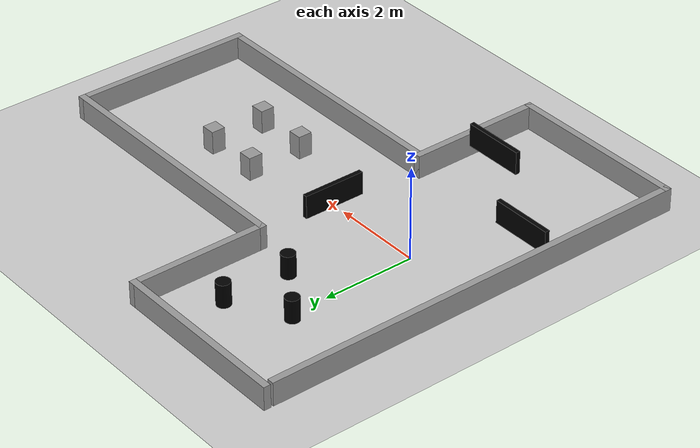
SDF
<sdf version="1.7">
 <world name="default">
  <light name="sun" type="directional">
   <pose>0 0 10 0 -0 0</pose>
   <diffuse>0.8 0.8 0.8 1</diffuse>
   <specular>0.2 0.2 0.2 1</specular>
   <attenuation>
    <range>1000</range>
    <constant>0.9</constant>
    <linear>0.01</linear>
    <quadratic>0.001</quadratic>
   </attenuation>
   <direction>-0.5 0.1 -0.9</direction>
   <spot><inner_angle>0</inner_angle><outer_angle>0</outer_angle><falloff>0</falloff></spot>
  </light>
  <model name="ground_plane">
   <static>1</static>
   <link name="link">
    <collision name="collision">
     <geometry><plane><normal>0 0 1</normal><size>100 100</size></plane></geometry>
     <surface><friction><ode><mu>100</mu><mu2>50</mu2></ode></friction></surface>
    </collision>
    <visual name="visual">
     <cast_shadows>0</cast_shadows>
     <geometry><plane><normal>0 0 1</normal><size>100 100</size></plane></geometry>
     <material>
      <script><uri>file://media/materials/scripts/gazebo.material</uri><name>Gazebo/Grey</name></script>
     </material>
    </visual>
   </link>
  </model>
  <physics type="ode">
   <real_time_update_rate>5000</real_time_update_rate>
   <max_step_size>0.001</max_step_size>
   <real_time_factor>1</real_time_factor>
   <ode>
    <solver>
     <type>quick</type>
     <iters>150</iters>
     <precon_iters>0</precon_iters>
     <sor>1.4</sor>
     <use_dynamic_moi_rescaling>1</use_dynamic_moi_rescaling>
    </solver>
    <constraints>
     <cfm>1e-05</cfm>
     <erp>0.2</erp>
     <contact_max_correcting_vel>2000</contact_max_correcting_vel>
     <contact_surface_layer>0.01</contact_surface_layer>
    </constraints>
   </ode>
  </physics>
  <scene><ambient>0.4 0.4 0.4 1</ambient><background>0.7 0.7 0.7 1</background><shadows>1</shadows></scene>
  <gravity>0 0 -9.8</gravity>
  <magnetic_field>6e-06 2.3e-05 -4.2e-05</magnetic_field>
  <atmosphere type="adiabatic"/>
  <spherical_coordinates>
   <surface_model>EARTH_WGS84</surface_model>
   <latitude_deg>0</latitude_deg>
   <longitude_deg>0</longitude_deg>
   <elevation>0</elevation>
   <heading_deg>0</heading_deg>
  </spherical_coordinates>
  <model name="T-room">
   <pose>3.03824 -0.005141 0 0 -0 0</pose>
   <link name="Wall_16">
    <collision name="Wall_16_Collision">
     <geometry><box><size>9.5 0.15 0.5</size></box></geometry>
     <pose>0 0 0.25 0 -0 0</pose>
    </collision>
    <visual name="Wall_16_Visual">
     <pose>0 0 0.25 0 -0 0</pose>
     <geometry><box><size>9.5 0.15 0.5</size></box></geometry>
     <material>
      <script><uri>file://media/materials/scripts/gazebo.material</uri><name>Gazebo/Grey</name></script>
      <ambient>1 1 1 1</ambient>
     </material>
     <meta><layer>0</layer></meta>
    </visual>
    <pose>-4.85 -0.1 0 0 -0 -1.5708</pose>
   </link>
   <link name="Wall_17">
    <collision name="Wall_17_Collision">
     <geometry><box><size>4 0.15 0.5</size></box></geometry>
     <pose>0 0 0.25 0 -0 0</pose>
    </collision>
    <visual name="Wall_17_Visual">
     <pose>0 0 0.25 0 -0 0</pose>
     <geometry><box><size>4 0.15 0.5</size></box></geometry>
     <material>
      <script><uri>file://media/materials/scripts/gazebo.material</uri><name>Gazebo/Grey</name></script>
      <ambient>1 1 1 1</ambient>
     </material>
     <meta><layer>0</layer></meta>
    </visual>
    <pose>-2.925 -4.775 0 0 -0 0</pose>
   </link>
   <link name="Wall_18">
    <collision name="Wall_18_Collision">
     <geometry><box><size>3 0.15 0.5</size></box></geometry>
     <pose>0 0 0.25 0 -0 0</pose>
    </collision>
    <visual name="Wall_18_Visual">
     <pose>0 0 0.25 0 -0 0</pose>
     <geometry><box><size>3 0.15 0.5</size></box></geometry>
     <material>
      <script><uri>file://media/materials/scripts/gazebo.material</uri><name>Gazebo/Grey</name></script>
      <ambient>1 1 1 1</ambient>
     </material>
     <meta><layer>0</layer></meta>
    </visual>
    <pose>-1 -3.35 0 0 -0 1.5708</pose>
   </link>
   <link name="Wall_19">
    <collision name="Wall_19_Collision">
     <geometry><box><size>6 0.15 0.5</size></box></geometry>
     <pose>0 0 0.25 0 -0 0</pose>
    </collision>
    <visual name="Wall_19_Visual">
     <pose>0 0 0.25 0 -0 0</pose>
     <geometry><box><size>6 0.15 0.5</size></box></geometry>
     <material>
      <script><uri>file://media/materials/scripts/gazebo.material</uri><name>Gazebo/Grey</name></script>
      <ambient>1 1 1 1</ambient>
     </material>
     <meta><layer>0</layer></meta>
    </visual>
    <pose>1.925 -1.925 0 0 -0 0</pose>
   </link>
   <link name="Wall_20">
    <collision name="Wall_20_Collision">
     <geometry><box><size>4 0.15 0.5</size></box></geometry>
     <pose>0 0 0.25 0 -0 0</pose>
    </collision>
    <visual name="Wall_20_Visual">
     <pose>0 0 0.25 0 -0 0</pose>
     <geometry><box><size>4 0.15 0.5</size></box></geometry>
     <material>
      <script><uri>file://media/materials/scripts/gazebo.material</uri><name>Gazebo/Grey</name></script>
      <ambient>1 1 1 1</ambient>
     </material>
     <meta><layer>0</layer></meta>
    </visual>
    <pose>4.85 0 0 0 -0 1.5708</pose>
   </link>
   <link name="Wall_21">
    <collision name="Wall_21_Collision">
     <geometry><box><size>6 0.15 0.5</size></box></geometry>
     <pose>0 0 0.25 0 -0 0</pose>
    </collision>
    <visual name="Wall_21_Visual">
     <pose>0 0 0.25 0 -0 0</pose>
     <geometry><box><size>6 0.15 0.5</size></box></geometry>
     <material>
      <script><uri>file://media/materials/scripts/gazebo.material</uri><name>Gazebo/Grey</name></script>
      <ambient>1 1 1 1</ambient>
     </material>
     <meta><layer>0</layer></meta>
    </visual>
    <pose>1.925 1.925 0 0 -0 3.14159</pose>
   </link>
   <link name="Wall_22">
    <collision name="Wall_22_Collision">
     <geometry><box><size>3 0.15 0.5</size></box></geometry>
     <pose>0 0 0.25 0 -0 0</pose>
    </collision>
    <visual name="Wall_22_Visual">
     <pose>0 0 0.25 0 -0 0</pose>
     <geometry><box><size>3 0.15 0.5</size></box></geometry>
     <material>
      <script><uri>file://media/materials/scripts/gazebo.material</uri><name>Gazebo/Grey</name></script>
      <ambient>1 1 1 1</ambient>
     </material>
     <meta><layer>0</layer></meta>
    </visual>
    <pose>-1 3.35 0 0 -0 1.5708</pose>
   </link>
   <link name="Wall_23">
    <collision name="Wall_23_Collision">
     <geometry><box><size>4 0.15 0.5</size></box></geometry>
     <pose>0 0 0.25 0 -0 0</pose>
    </collision>
    <visual name="Wall_23_Visual">
     <pose>0 0 0.25 0 -0 0</pose>
     <geometry><box><size>4 0.15 0.5</size></box></geometry>
     <material>
      <script><uri>file://media/materials/scripts/gazebo.material</uri><name>Gazebo/Grey</name></script>
      <ambient>1 1 1 1</ambient>
     </material>
     <meta><layer>0</layer></meta>
    </visual>
    <pose>-2.925 4.775 0 0 -0 3.14159</pose>
   </link>
   <static>1</static>
  </model>
  <model name="rectangle_obstacles">
   <link name="obstacle_1">
    <inertial>
     <mass>1</mass>
     <inertia>
      <ixx>0.166667</ixx>
      <ixy>0</ixy>
      <ixz>0</ixz>
      <iyy>0.166667</iyy>
      <iyz>0</iyz>
      <izz>0.166667</izz>
     </inertia>
    </inertial>
    <pose>-0.6 -0.6 0 0 -0 0</pose>
    <visual name="visual">
     <geometry><box><size>0.3 0.3 0.5</size></box></geometry>
     <material>
      <lighting>1</lighting>
      <script><uri>file://media/materials/scripts/gazebo.material</uri><name>Gazebo/Grey</name></script>
      <shader type="pixel"><normal_map>__default__</normal_map></shader>
      <ambient>0.3 0.3 0.3 1</ambient>
      <diffuse>0.7 0.7 0.7 1</diffuse>
      <specular>0.01 0.01 0.01 1</specular>
      <emissive>0 0 0 1</emissive>
     </material>
    </visual>
    <collision name="collision">
     <geometry><box><size>0.3 0.3 0.5</size></box></geometry>
     <surface>
      <friction>
       <ode><mu>1</mu><mu2>1</mu2><fdir1>0 0 0</fdir1><slip1>0</slip1><slip2>0</slip2></ode>
       <torsional>
        <coefficient>1</coefficient>
        <patch_radius>0</patch_radius>
        <surface_radius>0</surface_radius>
        <use_patch_radius>1</use_patch_radius>
        <ode><slip>0</slip></ode>
       </torsional>
      </friction>
      <bounce><restitution_coefficient>0</restitution_coefficient><threshold>1e+06</threshold></bounce>
      <contact>
       <collide_without_contact>0</collide_without_contact>
       <collide_without_contact_bitmask>1</collide_without_contact_bitmask>
       <collide_bitmask>1</collide_bitmask>
       <ode>
        <soft_cfm>0</soft_cfm>
        <soft_erp>0.2</soft_erp>
        <kp>1e+13</kp>
        <kd>1</kd>
        <max_vel>0.01</max_vel>
        <min_depth>0</min_depth>
       </ode>
       <bullet>
        <split_impulse>1</split_impulse>
        <split_impulse_penetration_threshold>-0.01</split_impulse_penetration_threshold>
        <soft_cfm>0</soft_cfm>
        <soft_erp>0.2</soft_erp>
        <kp>1e+13</kp>
        <kd>1</kd>
       </bullet>
      </contact>
     </surface>
    </collision>
   </link>
   <link name="obstacle_2">
    <inertial>
     <mass>1</mass>
     <inertia>
      <ixx>0.166667</ixx>
      <ixy>0</ixy>
      <ixz>0</ixz>
      <iyy>0.166667</iyy>
      <iyz>0</iyz>
      <izz>0.166667</izz>
     </inertia>
    </inertial>
    <pose>-0.6 0.6 0 0 -0 0</pose>
    <visual name="visual">
     <geometry><box><size>0.3 0.3 0.5</size></box></geometry>
     <material>
      <lighting>1</lighting>
      <script><uri>file://media/materials/scripts/gazebo.material</uri><name>Gazebo/Grey</name></script>
      <shader type="pixel"><normal_map>__default__</normal_map></shader>
      <ambient>0.3 0.3 0.3 1</ambient>
      <diffuse>0.7 0.7 0.7 1</diffuse>
      <specular>0.01 0.01 0.01 1</specular>
      <emissive>0 0 0 1</emissive>
     </material>
    </visual>
    <collision name="collision">
     <geometry><box><size>0.3 0.3 0.5</size></box></geometry>
     <surface>
      <friction>
       <ode><mu>1</mu><mu2>1</mu2><fdir1>0 0 0</fdir1><slip1>0</slip1><slip2>0</slip2></ode>
       <torsional>
        <coefficient>1</coefficient>
        <patch_radius>0</patch_radius>
        <surface_radius>0</surface_radius>
        <use_patch_radius>1</use_patch_radius>
        <ode><slip>0</slip></ode>
       </torsional>
      </friction>
      <bounce><restitution_coefficient>0</restitution_coefficient><threshold>1e+06</threshold></bounce>
      <contact>
       <collide_without_contact>0</collide_without_contact>
       <collide_without_contact_bitmask>1</collide_without_contact_bitmask>
       <collide_bitmask>1</collide_bitmask>
       <ode>
        <soft_cfm>0</soft_cfm>
        <soft_erp>0.2</soft_erp>
        <kp>1e+13</kp>
        <kd>1</kd>
        <max_vel>0.01</max_vel>
        <min_depth>0</min_depth>
       </ode>
       <bullet>
        <split_impulse>1</split_impulse>
        <split_impulse_penetration_threshold>-0.01</split_impulse_penetration_threshold>
        <soft_cfm>0</soft_cfm>
        <soft_erp>0.2</soft_erp>
        <kp>1e+13</kp>
        <kd>1</kd>
       </bullet>
      </contact>
     </surface>
    </collision>
   </link>
   <link name="obstacle_3">
    <inertial>
     <mass>1</mass>
     <inertia>
      <ixx>0.166667</ixx>
      <ixy>0</ixy>
      <ixz>0</ixz>
      <iyy>0.166667</iyy>
      <iyz>0</iyz>
      <izz>0.166667</izz>
     </inertia>
    </inertial>
    <pose>0.6 0.6 0 0 -0 0</pose>
    <visual name="visual">
     <geometry><box><size>0.3 0.3 0.5</size></box></geometry>
     <material>
      <lighting>1</lighting>
      <script><uri>file://media/materials/scripts/gazebo.material</uri><name>Gazebo/Grey</name></script>
      <shader type="pixel"><normal_map>__default__</normal_map></shader>
      <ambient>0.3 0.3 0.3 1</ambient>
      <diffuse>0.7 0.7 0.7 1</diffuse>
      <specular>0.01 0.01 0.01 1</specular>
      <emissive>0 0 0 1</emissive>
     </material>
    </visual>
    <collision name="collision">
     <geometry><box><size>0.3 0.3 0.5</size></box></geometry>
     <surface>
      <friction>
       <ode><mu>1</mu><mu2>1</mu2><fdir1>0 0 0</fdir1><slip1>0</slip1><slip2>0</slip2></ode>
       <torsional>
        <coefficient>1</coefficient>
        <patch_radius>0</patch_radius>
        <surface_radius>0</surface_radius>
        <use_patch_radius>1</use_patch_radius>
        <ode><slip>0</slip></ode>
       </torsional>
      </friction>
      <bounce><restitution_coefficient>0</restitution_coefficient><threshold>1e+06</threshold></bounce>
      <contact>
       <collide_without_contact>0</collide_without_contact>
       <collide_without_contact_bitmask>1</collide_without_contact_bitmask>
       <collide_bitmask>1</collide_bitmask>
       <ode>
        <soft_cfm>0</soft_cfm>
        <soft_erp>0.2</soft_erp>
        <kp>1e+13</kp>
        <kd>1</kd>
        <max_vel>0.01</max_vel>
        <min_depth>0</min_depth>
       </ode>
       <bullet>
        <split_impulse>1</split_impulse>
        <split_impulse_penetration_threshold>-0.01</split_impulse_penetration_threshold>
        <soft_cfm>0</soft_cfm>
        <soft_erp>0.2</soft_erp>
        <kp>1e+13</kp>
        <kd>1</kd>
       </bullet>
      </contact>
     </surface>
    </collision>
   </link>
   <link name="obstacle_4">
    <inertial>
     <mass>1</mass>
     <inertia>
      <ixx>0.166667</ixx>
      <ixy>0</ixy>
      <ixz>0</ixz>
      <iyy>0.166667</iyy>
      <iyz>0</iyz>
      <izz>0.166667</izz>
     </inertia>
    </inertial>
    <pose>0.6 -0.6 0 0 -0 0</pose>
    <visual name="visual">
     <geometry><box><size>0.3 0.3 0.5</size></box></geometry>
     <material>
      <lighting>1</lighting>
      <script><uri>file://media/materials/scripts/gazebo.material</uri><name>Gazebo/Grey</name></script>
      <shader type="pixel"><normal_map>__default__</normal_map></shader>
      <ambient>0.3 0.3 0.3 1</ambient>
      <diffuse>0.7 0.7 0.7 1</diffuse>
      <specular>0.01 0.01 0.01 1</specular>
      <emissive>0 0 0 1</emissive>
     </material>
    </visual>
    <collision name="collision">
     <geometry><box><size>0.3 0.3 0.5</size></box></geometry>
     <surface>
      <friction>
       <ode><mu>1</mu><mu2>1</mu2><fdir1>0 0 0</fdir1><slip1>0</slip1><slip2>0</slip2></ode>
       <torsional>
        <coefficient>1</coefficient>
        <patch_radius>0</patch_radius>
        <surface_radius>0</surface_radius>
        <use_patch_radius>1</use_patch_radius>
        <ode><slip>0</slip></ode>
       </torsional>
      </friction>
      <bounce><restitution_coefficient>0</restitution_coefficient><threshold>1e+06</threshold></bounce>
      <contact>
       <collide_without_contact>0</collide_without_contact>
       <collide_without_contact_bitmask>1</collide_without_contact_bitmask>
       <collide_bitmask>1</collide_bitmask>
       <ode>
        <soft_cfm>0</soft_cfm>
        <soft_erp>0.2</soft_erp>
        <kp>1e+13</kp>
        <kd>1</kd>
        <max_vel>0.01</max_vel>
        <min_depth>0</min_depth>
       </ode>
       <bullet>
        <split_impulse>1</split_impulse>
        <split_impulse_penetration_threshold>-0.01</split_impulse_penetration_threshold>
        <soft_cfm>0</soft_cfm>
        <soft_erp>0.2</soft_erp>
        <kp>1e+13</kp>
        <kd>1</kd>
       </bullet>
      </contact>
     </surface>
    </collision>
   </link>
   <static>0</static>
   <pose>4.41508 0.202152 0.5 0 -0 0</pose>
  </model>
  <model name="small_cylinder">
   <link name="link">
    <pose>0 0 0.5 0 -0 0</pose>
    <inertial>
     <inertia><ixx>1</ixx><ixy>0</ixy><ixz>0</ixz><iyy>1</iyy><iyz>0</iyz><izz>1</izz></inertia>
     <mass>1</mass>
    </inertial>
    <visual name="visual">
     <geometry><cylinder><radius>0.15</radius><length>0.5</length></cylinder></geometry>
     <material>
      <shader type="pixel"><normal_map>__default__</normal_map></shader>
      <script><name>ModelPreview_1::link::visual_MATERIAL_</name><uri>__default__</uri></script>
      <ambient>0 0 0 1</ambient>
      <diffuse>0 0 0 1</diffuse>
      <specular>0 0 0 1</specular>
      <emissive>0 0 0 1</emissive>
     </material>
    </visual>
    <collision name="collision">
     <geometry><cylinder><radius>0.15</radius><length>0.5</length></cylinder></geometry>
     <surface>
      <friction>
       <ode><mu>1</mu><mu2>1</mu2><fdir1>0 0 0</fdir1><slip1>0</slip1><slip2>0</slip2></ode>
       <torsional>
        <coefficient>1</coefficient>
        <patch_radius>0</patch_radius>
        <surface_radius>0</surface_radius>
        <use_patch_radius>1</use_patch_radius>
        <ode><slip>0</slip></ode>
       </torsional>
      </friction>
      <bounce><restitution_coefficient>0</restitution_coefficient><threshold>1e+06</threshold></bounce>
      <contact>
       <collide_without_contact>0</collide_without_contact>
       <collide_without_contact_bitmask>1</collide_without_contact_bitmask>
       <collide_bitmask>1</collide_bitmask>
       <ode>
        <soft_cfm>0</soft_cfm>
        <soft_erp>0.2</soft_erp>
        <kp>1e+13</kp>
        <kd>1</kd>
        <max_vel>0.01</max_vel>
        <min_depth>0</min_depth>
       </ode>
       <bullet>
        <split_impulse>1</split_impulse>
        <split_impulse_penetration_threshold>-0.01</split_impulse_penetration_threshold>
        <soft_cfm>0</soft_cfm>
        <soft_erp>0.2</soft_erp>
        <kp>1e+13</kp>
        <kd>1</kd>
       </bullet>
      </contact>
     </surface>
    </collision>
   </link>
   <static>0</static>
   <pose>-0.380559 3.05894 0 0 -0 0</pose>
  </model>
  <model name="small_cylinder_0">
   <link name="link">
    <pose>0 0 0.5 0 -0 0</pose>
    <inertial>
     <inertia><ixx>1</ixx><ixy>0</ixy><ixz>0</ixz><iyy>1</iyy><iyz>0</iyz><izz>1</izz></inertia>
     <mass>1</mass>
    </inertial>
    <visual name="visual">
     <geometry><cylinder><radius>0.15</radius><length>0.5</length></cylinder></geometry>
     <material>
      <shader type="pixel"><normal_map>__default__</normal_map></shader>
      <script><name>ModelPreview_1::link::visual_MATERIAL_</name><uri>__default__</uri></script>
      <ambient>0 0 0 1</ambient>
      <diffuse>0 0 0 1</diffuse>
      <specular>0 0 0 1</specular>
      <emissive>0 0 0 1</emissive>
     </material>
    </visual>
    <collision name="collision">
     <geometry><cylinder><radius>0.15</radius><length>0.5</length></cylinder></geometry>
     <surface>
      <friction>
       <ode><mu>1</mu><mu2>1</mu2><fdir1>0 0 0</fdir1><slip1>0</slip1><slip2>0</slip2></ode>
       <torsional>
        <coefficient>1</coefficient>
        <patch_radius>0</patch_radius>
        <surface_radius>0</surface_radius>
        <use_patch_radius>1</use_patch_radius>
        <ode><slip>0</slip></ode>
       </torsional>
      </friction>
      <bounce><restitution_coefficient>0</restitution_coefficient><threshold>1e+06</threshold></bounce>
      <contact>
       <collide_without_contact>0</collide_without_contact>
       <collide_without_contact_bitmask>1</collide_without_contact_bitmask>
       <collide_bitmask>1</collide_bitmask>
       <ode>
        <soft_cfm>0</soft_cfm>
        <soft_erp>0.2</soft_erp>
        <kp>1e+13</kp>
        <kd>1</kd>
        <max_vel>0.01</max_vel>
        <min_depth>0</min_depth>
       </ode>
       <bullet>
        <split_impulse>1</split_impulse>
        <split_impulse_penetration_threshold>-0.01</split_impulse_penetration_threshold>
        <soft_cfm>0</soft_cfm>
        <soft_erp>0.2</soft_erp>
        <kp>1e+13</kp>
        <kd>1</kd>
       </bullet>
      </contact>
     </surface>
    </collision>
   </link>
   <static>0</static>
   <pose>0.767564 3.727 0 0 -0 0</pose>
  </model>
  <model name="small_cylinder_1">
   <link name="link">
    <pose>0 0 0.5 0 -0 0</pose>
    <inertial>
     <inertia><ixx>1</ixx><ixy>0</ixy><ixz>0</ixz><iyy>1</iyy><iyz>0</iyz><izz>1</izz></inertia>
     <mass>1</mass>
    </inertial>
    <visual name="visual">
     <geometry><cylinder><radius>0.15</radius><length>0.5</length></cylinder></geometry>
     <material>
      <shader type="pixel"><normal_map>__default__</normal_map></shader>
      <script><name>ModelPreview_1::link::visual_MATERIAL_</name><uri>__default__</uri></script>
      <ambient>0 0 0 1</ambient>
      <diffuse>0 0 0 1</diffuse>
      <specular>0 0 0 1</specular>
      <emissive>0 0 0 1</emissive>
     </material>
    </visual>
    <collision name="collision">
     <geometry><cylinder><radius>0.15</radius><length>0.5</length></cylinder></geometry>
     <surface>
      <friction>
       <ode><mu>1</mu><mu2>1</mu2><fdir1>0 0 0</fdir1><slip1>0</slip1><slip2>0</slip2></ode>
       <torsional>
        <coefficient>1</coefficient>
        <patch_radius>0</patch_radius>
        <surface_radius>0</surface_radius>
        <use_patch_radius>1</use_patch_radius>
        <ode><slip>0</slip></ode>
       </torsional>
      </friction>
      <bounce><restitution_coefficient>0</restitution_coefficient><threshold>1e+06</threshold></bounce>
      <contact>
       <collide_without_contact>0</collide_without_contact>
       <collide_without_contact_bitmask>1</collide_without_contact_bitmask>
       <collide_bitmask>1</collide_bitmask>
       <ode>
        <soft_cfm>0</soft_cfm>
        <soft_erp>0.2</soft_erp>
        <kp>1e+13</kp>
        <kd>1</kd>
        <max_vel>0.01</max_vel>
        <min_depth>0</min_depth>
       </ode>
       <bullet>
        <split_impulse>1</split_impulse>
        <split_impulse_penetration_threshold>-0.01</split_impulse_penetration_threshold>
        <soft_cfm>0</soft_cfm>
        <soft_erp>0.2</soft_erp>
        <kp>1e+13</kp>
        <kd>1</kd>
       </bullet>
      </contact>
     </surface>
    </collision>
   </link>
   <static>0</static>
   <pose>0.730082 2.29034 0 0 -0 0</pose>
  </model>
  <model name="small_box">
   <link name="link">
    <pose>0 0 0.5 0 -0 0</pose>
    <inertial>
     <inertia><ixx>1</ixx><ixy>0</ixy><ixz>0</ixz><iyy>1</iyy><iyz>0</iyz><izz>1</izz></inertia>
     <mass>1</mass>
    </inertial>
    <visual name="visual">
     <geometry><box><size>1.35 0.1 0.5</size></box></geometry>
     <material>
      <shader type="pixel"><normal_map>__default__</normal_map></shader>
      <script><name>ModelPreview_4::link::visual_MATERIAL_</name><uri>__default__</uri></script>
      <ambient>0 0 0 1</ambient>
      <diffuse>0 0 0 1</diffuse>
      <specular>0 0 0 1</specular>
      <emissive>0 0 0 1</emissive>
     </material>
    </visual>
    <collision name="collision">
     <geometry><box><size>1.35 0.1 0.5</size></box></geometry>
     <surface>
      <friction>
       <ode><mu>1</mu><mu2>1</mu2><fdir1>0 0 0</fdir1><slip1>0</slip1><slip2>0</slip2></ode>
       <torsional>
        <coefficient>1</coefficient>
        <patch_radius>0</patch_radius>
        <surface_radius>0</surface_radius>
        <use_patch_radius>1</use_patch_radius>
        <ode><slip>0</slip></ode>
       </torsional>
      </friction>
      <bounce><restitution_coefficient>0</restitution_coefficient><threshold>1e+06</threshold></bounce>
      <contact>
       <collide_without_contact>0</collide_without_contact>
       <collide_without_contact_bitmask>1</collide_without_contact_bitmask>
       <collide_bitmask>1</collide_bitmask>
       <ode>
        <soft_cfm>0</soft_cfm>
        <soft_erp>0.2</soft_erp>
        <kp>1e+13</kp>
        <kd>1</kd>
        <max_vel>0.01</max_vel>
        <min_depth>0</min_depth>
       </ode>
       <bullet>
        <split_impulse>1</split_impulse>
        <split_impulse_penetration_threshold>-0.01</split_impulse_penetration_threshold>
        <soft_cfm>0</soft_cfm>
        <soft_erp>0.2</soft_erp>
        <kp>1e+13</kp>
        <kd>1</kd>
       </bullet>
      </contact>
     </surface>
    </collision>
   </link>
   <static>0</static>
   <pose>-1.0502 -1.81617 0 0 -0 0</pose>
  </model>
  <model name="small_box_0">
   <link name="link">
    <pose>0 0 0.5 0 -0 0</pose>
    <inertial>
     <inertia><ixx>1</ixx><ixy>0</ixy><ixz>0</ixz><iyy>1</iyy><iyz>0</iyz><izz>1</izz></inertia>
     <mass>1</mass>
    </inertial>
    <visual name="visual">
     <geometry><box><size>1.35 0.1 0.5</size></box></geometry>
     <material>
      <shader type="pixel"><normal_map>__default__</normal_map></shader>
      <script><name>ModelPreview_4::link::visual_MATERIAL_</name><uri>__default__</uri></script>
      <ambient>0 0 0 1</ambient>
      <diffuse>0 0 0 1</diffuse>
      <specular>0 0 0 1</specular>
      <emissive>0 0 0 1</emissive>
     </material>
    </visual>
    <collision name="collision">
     <geometry><box><size>1.35 0.1 0.5</size></box></geometry>
     <surface>
      <friction>
       <ode><mu>1</mu><mu2>1</mu2><fdir1>0 0 0</fdir1><slip1>0</slip1><slip2>0</slip2></ode>
       <torsional>
        <coefficient>1</coefficient>
        <patch_radius>0</patch_radius>
        <surface_radius>0</surface_radius>
        <use_patch_radius>1</use_patch_radius>
        <ode><slip>0</slip></ode>
       </torsional>
      </friction>
      <bounce><restitution_coefficient>0</restitution_coefficient><threshold>1e+06</threshold></bounce>
      <contact>
       <collide_without_contact>0</collide_without_contact>
       <collide_without_contact_bitmask>1</collide_without_contact_bitmask>
       <collide_bitmask>1</collide_bitmask>
       <ode>
        <soft_cfm>0</soft_cfm>
        <soft_erp>0.2</soft_erp>
        <kp>1e+13</kp>
        <kd>1</kd>
        <max_vel>0.01</max_vel>
        <min_depth>0</min_depth>
       </ode>
       <bullet>
        <split_impulse>1</split_impulse>
        <split_impulse_penetration_threshold>-0.01</split_impulse_penetration_threshold>
        <soft_cfm>0</soft_cfm>
        <soft_erp>0.2</soft_erp>
        <kp>1e+13</kp>
        <kd>1</kd>
       </bullet>
      </contact>
     </surface>
    </collision>
   </link>
   <static>0</static>
   <pose>1.28045 -3.18615 0 0 -0 0</pose>
  </model>
  <model name="small_box_1">
   <link name="link">
    <pose>0 0 0.5 0 -0 0</pose>
    <inertial>
     <inertia><ixx>1</ixx><ixy>0</ixy><ixz>0</ixz><iyy>1</iyy><iyz>0</iyz><izz>1</izz></inertia>
     <mass>1</mass>
    </inertial>
    <visual name="visual">
     <geometry><box><size>1.35 0.1 0.5</size></box></geometry>
     <material>
      <shader type="pixel"><normal_map>__default__</normal_map></shader>
      <script><name>ModelPreview_4::link::visual_MATERIAL_</name><uri>__default__</uri></script>
      <ambient>0 0 0 1</ambient>
      <diffuse>0 0 0 1</diffuse>
      <specular>0 0 0 1</specular>
      <emissive>0 0 0 1</emissive>
     </material>
    </visual>
    <collision name="collision">
     <geometry><box><size>1.35 0.1 0.5</size></box></geometry>
     <surface>
      <friction>
       <ode><mu>1</mu><mu2>1</mu2><fdir1>0 0 0</fdir1><slip1>0</slip1><slip2>0</slip2></ode>
       <torsional>
        <coefficient>1</coefficient>
        <patch_radius>0</patch_radius>
        <surface_radius>0</surface_radius>
        <use_patch_radius>1</use_patch_radius>
        <ode><slip>0</slip></ode>
       </torsional>
      </friction>
      <bounce><restitution_coefficient>0</restitution_coefficient><threshold>1e+06</threshold></bounce>
      <contact>
       <collide_without_contact>0</collide_without_contact>
       <collide_without_contact_bitmask>1</collide_without_contact_bitmask>
       <collide_bitmask>1</collide_bitmask>
       <ode>
        <soft_cfm>0</soft_cfm>
        <soft_erp>0.2</soft_erp>
        <kp>1e+13</kp>
        <kd>1</kd>
        <max_vel>0.01</max_vel>
        <min_depth>0</min_depth>
       </ode>
       <bullet>
        <split_impulse>1</split_impulse>
        <split_impulse_penetration_threshold>-0.01</split_impulse_penetration_threshold>
        <soft_cfm>0</soft_cfm>
        <soft_erp>0.2</soft_erp>
        <kp>1e+13</kp>
        <kd>1</kd>
       </bullet>
      </contact>
     </surface>
    </collision>
   </link>
   <static>0</static>
   <pose>2.0037 0.23902 0 0 0 -1.57472</pose>
  </model>
 </world>
</sdf>
